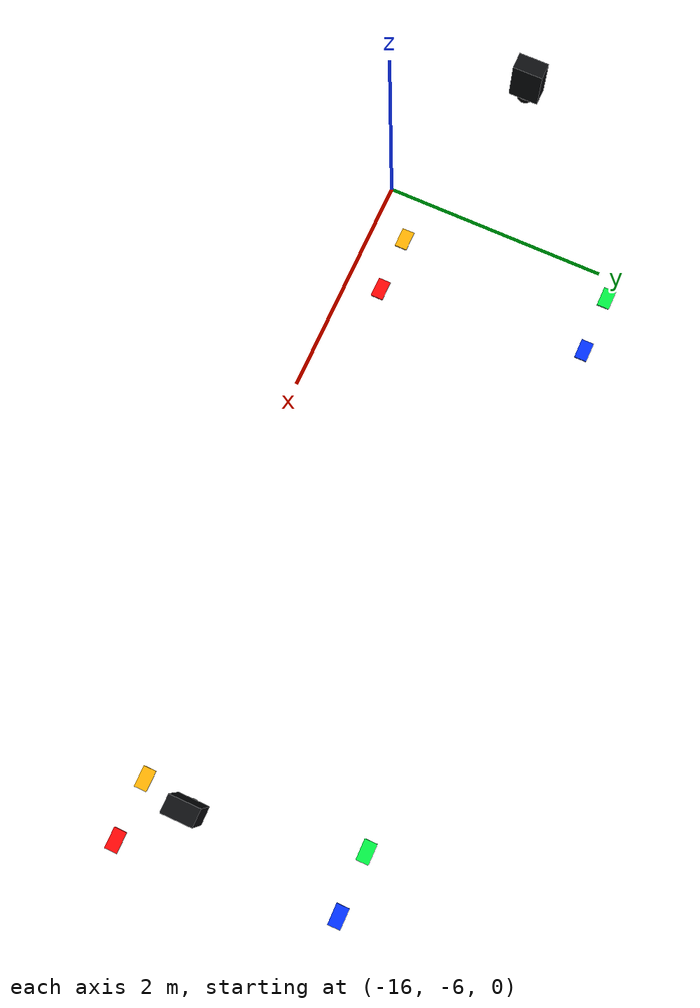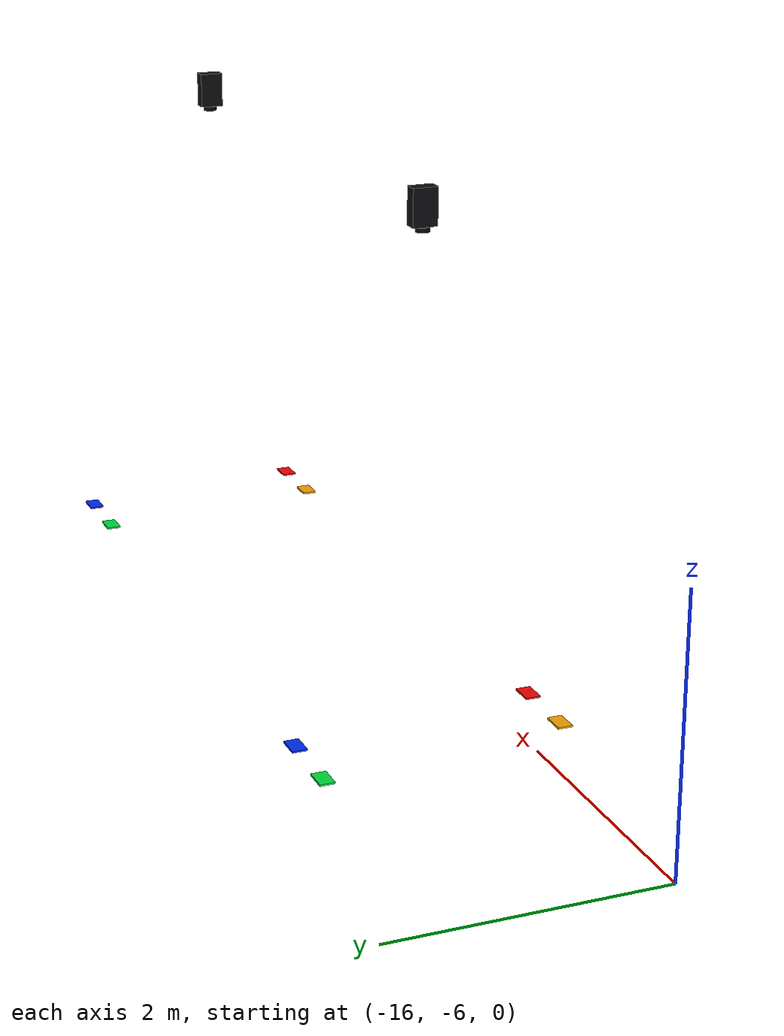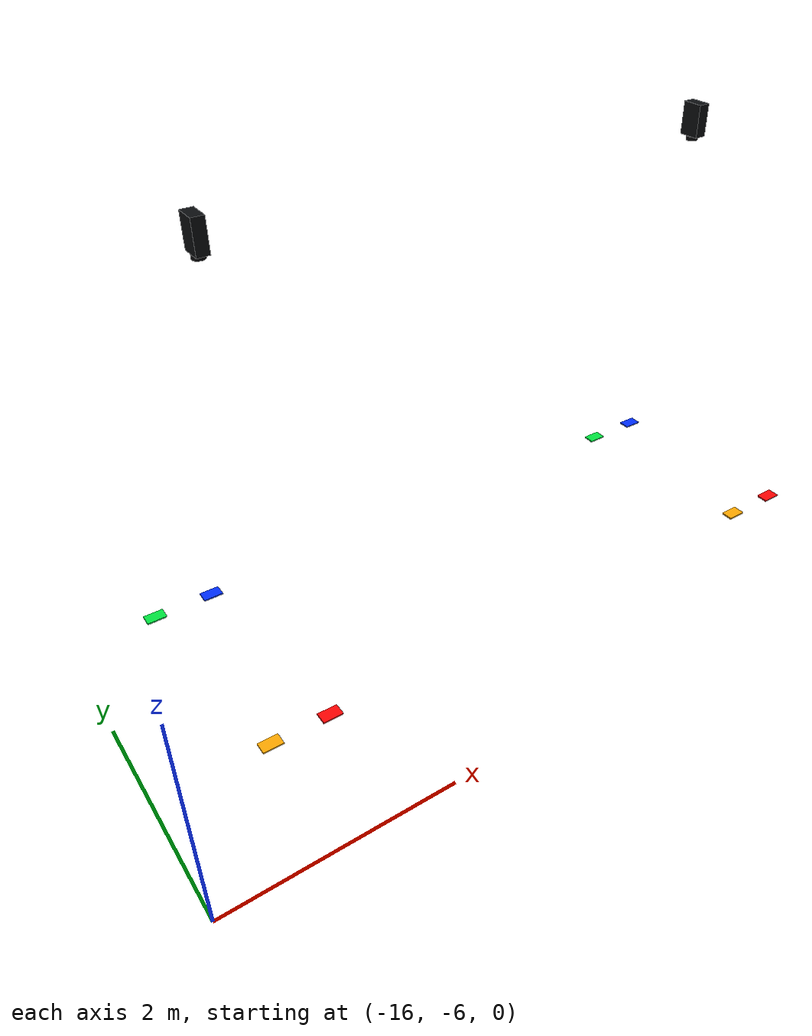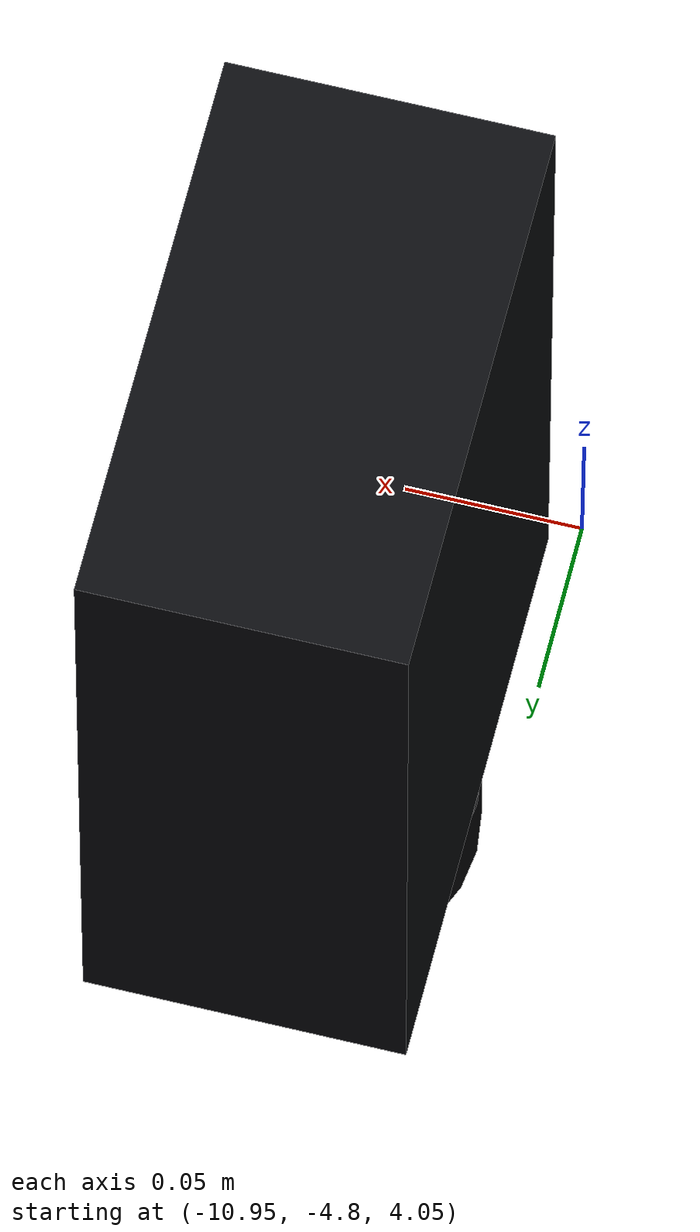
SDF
<?xml version="1.0"?>
<sdf version="1.7">
  <model name="room315_visual_observation_rig">
    <static>true</static>

    <link name="right_rail_rgbd_camera_link">
      <pose>-14.9 -4.70 4.2 0 1.5708 0</pose>

      <visual name="camera_body_visual">
        <geometry>
          <box>
            <size>0.24 0.16 0.09</size>
          </box>
        </geometry>
        <material>
          <ambient>0.04 0.045 0.055 1</ambient>
          <diffuse>0.04 0.045 0.055 1</diffuse>
          <specular>0.4 0.4 0.4 1</specular>
        </material>
      </visual>

      <visual name="camera_lens_visual">
        <pose>0.14 0 0 0 1.5708 0</pose>
        <geometry>
          <cylinder>
            <radius>0.045</radius>
            <length>0.03</length>
          </cylinder>
        </geometry>
        <material>
          <ambient>0.02 0.02 0.025 1</ambient>
          <diffuse>0.02 0.02 0.025 1</diffuse>
          <specular>0.8 0.8 0.9 1</specular>
        </material>
      </visual>

      <sensor name="room315_right_rail_rgbd" type="rgbd_camera">
        <!-- Move the sensor in front of the camera body/lens so it does not see its own visual geometry. -->
        <pose>0.25 0 0 0 0 0</pose>
        <always_on>true</always_on>
        <update_rate>10</update_rate>
        <visualize>false</visualize>
        <topic>/room_315/perception/right_rail_rgbd</topic>
        <camera>
          <horizontal_fov>1.15</horizontal_fov>
          <image>
            <width>640</width>
            <height>480</height>
          </image>
          <clip>
            <near>0.15</near>
            <far>5.0</far>
          </clip>
          <optical_frame_id>room315_right_rail_rgbd_optical_frame</optical_frame_id>
        </camera>
      </sensor>
    </link>

    <link name="left_rail_rgbd_camera_link">
      <pose>-10.9 -4.70 4.2 0 1.5708 0</pose>

      <visual name="camera_body_visual">
        <geometry>
          <box>
            <size>0.24 0.16 0.09</size>
          </box>
        </geometry>
        <material>
          <ambient>0.04 0.045 0.055 1</ambient>
          <diffuse>0.04 0.045 0.055 1</diffuse>
          <specular>0.4 0.4 0.4 1</specular>
        </material>
      </visual>

      <visual name="camera_lens_visual">
        <pose>0.14 0 0 0 1.5708 0</pose>
        <geometry>
          <cylinder>
            <radius>0.045</radius>
            <length>0.03</length>
          </cylinder>
        </geometry>
        <material>
          <ambient>0.02 0.02 0.025 1</ambient>
          <diffuse>0.02 0.02 0.025 1</diffuse>
          <specular>0.8 0.8 0.9 1</specular>
        </material>
      </visual>

      <sensor name="room315_left_rail_rgbd" type="rgbd_camera">
        <!-- Move the sensor in front of the camera body/lens so it does not see its own visual geometry. -->
        <pose>0.25 0 0 0 0 0</pose>
        <always_on>true</always_on>
        <update_rate>10</update_rate>
        <visualize>false</visualize>
        <topic>/room_315/perception/left_rail_rgbd</topic>
        <camera>
          <horizontal_fov>1.15</horizontal_fov>
          <image>
            <width>640</width>
            <height>480</height>
          </image>
          <clip>
            <near>0.15</near>
            <far>5.0</far>
          </clip>
          <optical_frame_id>room315_left_rail_rgbd_optical_frame</optical_frame_id>
        </camera>
      </sensor>
    </link>

    <link name="slot_fiducial_placeholders_link">
      <pose>0 0 0 0 0 0</pose>

      <visual name="right_slot_1_marker">
        <pose>-14.95 -3.86 0.856 0 0 0</pose>
        <geometry>
          <box>
            <size>0.16 0.10 0.012</size>
          </box>
        </geometry>
        <material>
          <ambient>0.0 0.1 0.55 1</ambient>
          <diffuse>0.0 0.18 1.0 1</diffuse>
        </material>

      </visual>

      <visual name="right_slot_2_marker">
        <pose>-15.43 -3.86 0.856 0 0 0</pose>
        <geometry>
          <box>
            <size>0.16 0.10 0.012</size>
          </box>
        </geometry>
        <material>
          <ambient>0.0 0.45 0.15 1</ambient>
          <diffuse>0.0 0.9 0.25 1</diffuse>
        </material>
      </visual>

      <visual name="right_slot_3_marker">
        <pose>-15.24 -5.54 0.856 0 0 0</pose>

        <geometry>
          <box>
            <size>0.16 0.10 0.012</size>
          </box>
        </geometry>
        <material>
          <ambient>0.52 0.32 0.0 1</ambient>
          <diffuse>1.0 0.66 0.0 1</diffuse>
        </material>

      </visual>

      <visual name="right_slot_4_marker">
        <pose>-14.77 -5.54 0.856 0 0 0</pose>
        <geometry>
          <box>
            <size>0.16 0.10 0.012</size>
          </box>
        </geometry>
        <material>
          <ambient>0.55 0.0 0.0 1</ambient>
          <diffuse>1.0 0.02 0.02 1</diffuse>
        </material>
      </visual>

      <visual name="left_slot_1_marker">
        <pose>-10.32 -3.865 0.856 0 0 0</pose>
        <geometry>
          <box>
            <size>0.16 0.10 0.012</size>
          </box>
        </geometry>
        <material>
          <ambient>0.0 0.1 0.55 1</ambient>
          <diffuse>0.0 0.18 1.0 1</diffuse>
        </material>
      </visual>

      <visual name="left_slot_2_marker">
        <pose>-10.80 -3.864 0.856 0 0 0</pose>
        <geometry>
          <box>
            <size>0.16 0.10 0.012</size>
          </box>
        </geometry>
        <material>
          <ambient>0.0 0.45 0.15 1</ambient>
          <diffuse>0.0 0.9 0.25 1</diffuse>
        </material>
      </visual>

      <visual name="left_slot_3_marker">
        <pose>-10.609 -5.543 0.856 0 0 0</pose>
        <geometry>
          <box>
            <size>0.16 0.10 0.012</size>
          </box>
        </geometry>
        <material>
          <ambient>0.52 0.32 0.0 1</ambient>
          <diffuse>1.0 0.66 0.0 1</diffuse>
        </material>
      </visual>

      <visual name="left_slot_4_marker">
        <pose>-10.14 -5.543 0.856 0 0 0</pose>
        <geometry>
          <box>
            <size>0.16 0.10 0.012</size>
          </box>
        </geometry>
        <material>
          <ambient>0.55 0.0 0.0 1</ambient>
          <diffuse>1.0 0.02 0.02 1</diffuse>
        </material>
      </visual>
    </link>

  </model>
</sdf>
